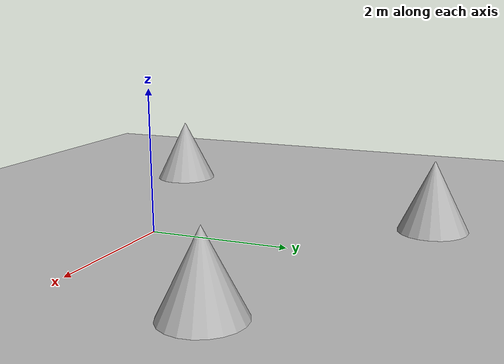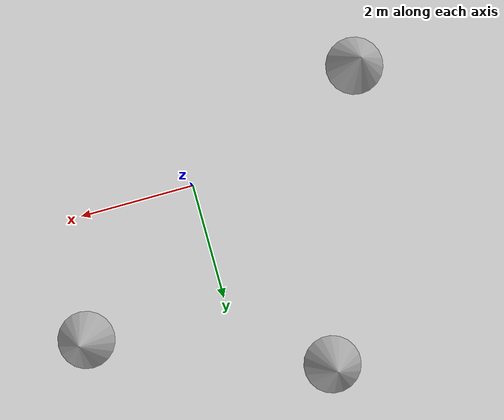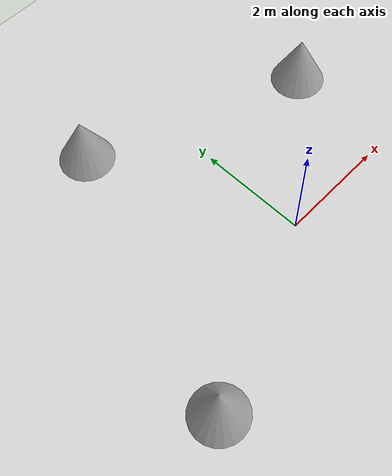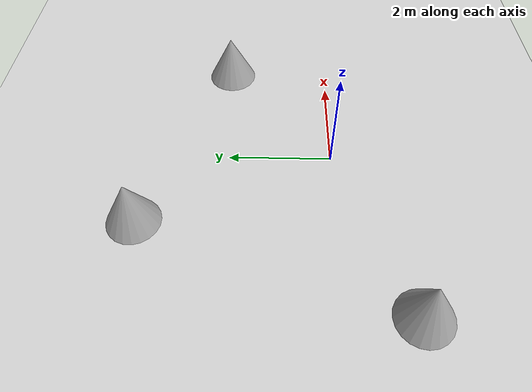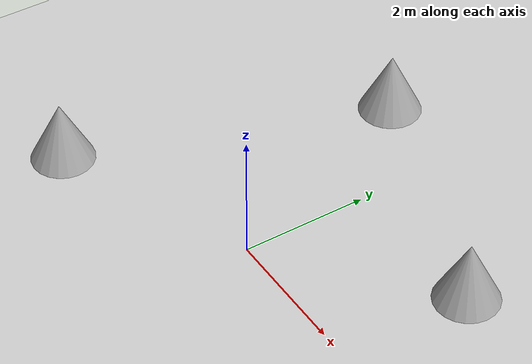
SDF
<sdf version="1.8">
  <world name="empty">

    <physics name="1ms" type="ignored">
      <max_step_size>0.001</max_step_size>
      <real_time_factor>1.0</real_time_factor>
    </physics>

    <plugin filename="gz-sim-physics-system" name="gz::sim::systems::Physics" />
    <plugin filename="gz-sim-user-commands-system" name="gz::sim::systems::UserCommands" />
    <plugin filename="gz-sim-scene-broadcaster-system" name="gz::sim::systems::SceneBroadcaster" />
    <plugin filename="gz-sim-sensors-system" name="gz::sim::systems::Sensors">
      <render_engine>ogre2</render_engine>
    </plugin>
    <plugin filename="gz-sim-imu-system" name="gz::sim::systems::Imu" />
    <plugin filename="gz-sim-contact-system" name="gz::sim::systems::Contact" />

    <gravity>0.0 0.0 -9.8</gravity>

     <light type="directional" name="sun">
      <cast_shadows>true</cast_shadows>
      <pose>0 0 10 0 0 0</pose>
      <diffuse>1 1 1 1</diffuse>
      <specular>0.5 0.5 0.5 1</specular>
      <attenuation>
        <range>1000</range>
        <constant>0.9</constant>
        <linear>0.01</linear>
        <quadratic>0.001</quadratic>
      </attenuation>
      <direction>-0.5 0.1 -0.9</direction>
    </light>

    <model name="ground_plane">
      <static>true</static>
      <link name="link">
        <collision name="collision">
          <geometry>
            <plane>
              <normal>0 0 1</normal>
              <size>100 100</size>
            </plane>
          </geometry>
        </collision>
        <visual name="visual">
          <geometry>
            <plane>
              <normal>0 0 1</normal>
              <size>100 100</size>
            </plane>
          </geometry>
          <material>
            <ambient>0.8 0.8 0.8 1</ambient>
            <diffuse>0.8 0.8 0.8 1</diffuse>
            <specular>0.8 0.8 0.8 1</specular>
          </material>
        </visual>
      </link>
    </model>

  <model name="goal_cone_01"><pose>-3.232 -1.267 0.5 5.254459108606895e-17 -7.713284103729037e-10 1.8784</pose><static>false</static><self_collide>false</self_collide><link name="goal_cone_link"><pose>0 0 0 0 0 0</pose><inertial><pose>0 0 0 0 0 0</pose><mass>1.0</mass><inertia><ixx>0.075</ixx><ixy>0</ixy><ixz>0</ixz><iyy>0.075</iyy><iyz>0</iyz><izz>0.075</izz></inertia></inertial><collision name="goal_cone_collision"><geometry><cone><radius>0.5</radius><length>1.0</length></cone></geometry></collision><visual name="goal_cone_visual"><geometry><cone><radius>0.5</radius><length>1.0</length></cone></geometry><material><ambient>0.699999988 0.699999988 0.699999988 1.0</ambient><diffuse>0.699999988 0.699999988 0.699999988 1.0</diffuse><specular>1 1 1 1</specular></material></visual></link></model><model name="goal_cone_02"><pose>-1.508 3.605 0.5 5.254459108606895e-17 -7.713284103729037e-10 1.6898</pose><static>false</static><self_collide>false</self_collide><link name="goal_cone_link"><pose>0 0 0 0 0 0</pose><inertial><pose>0 0 0 0 0 0</pose><mass>1.0</mass><inertia><ixx>0.075</ixx><ixy>0</ixy><ixz>0</ixz><iyy>0.075</iyy><iyz>0</iyz><izz>0.075</izz></inertia></inertial><collision name="goal_cone_collision"><geometry><cone><radius>0.5</radius><length>1.0</length></cone></geometry></collision><visual name="goal_cone_visual"><geometry><cone><radius>0.5</radius><length>1.0</length></cone></geometry><material><ambient>0.699999988 0.699999988 0.699999988 1.0</ambient><diffuse>0.699999988 0.699999988 0.699999988 1.0</diffuse><specular>1 1 1 1</specular></material></visual></link></model><model name="goal_cone_03"><pose>2.478 2.078 0.5 5.254459108606895e-17 -7.713284103729037e-10 1.2162</pose><static>false</static><self_collide>false</self_collide><link name="goal_cone_link"><pose>0 0 0 0 0 0</pose><inertial><pose>0 0 0 0 0 0</pose><mass>1.0</mass><inertia><ixx>0.075</ixx><ixy>0</ixy><ixz>0</ixz><iyy>0.075</iyy><iyz>0</iyz><izz>0.075</izz></inertia></inertial><collision name="goal_cone_collision"><geometry><cone><radius>0.5</radius><length>1.0</length></cone></geometry></collision><visual name="goal_cone_visual"><geometry><cone><radius>0.5</radius><length>1.0</length></cone></geometry><material><ambient>0.699999988 0.699999988 0.699999988 1.0</ambient><diffuse>0.699999988 0.699999988 0.699999988 1.0</diffuse><specular>1 1 1 1</specular></material></visual></link></model></world>
</sdf>
